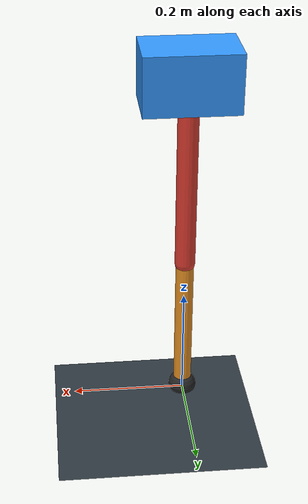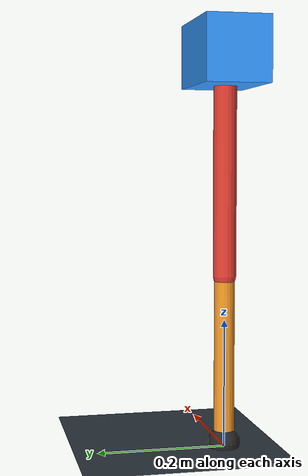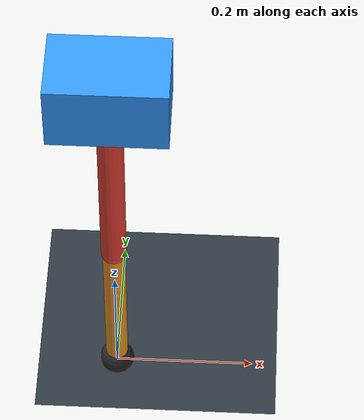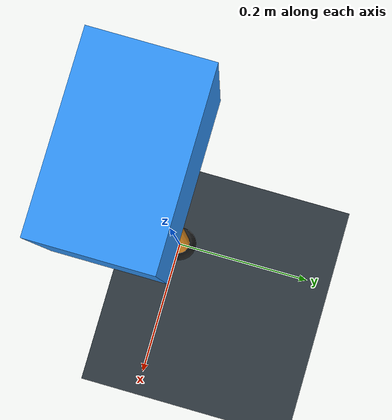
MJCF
<mujoco model="single_axis_two_bar">
  <compiler angle="radian" inertiafromgeom="true"/>
  <option timestep="0.001" integrator="implicitfast" gravity="0 0 -9.81"/>
  <default>
    <joint damping="0.08"/>
    <geom friction="1.2 0.01 0.0001" condim="3"/>
  </default>
  <worldbody>
    <geom name="floor" type="plane" size="5 5 0.1" rgba="0.18 0.22 0.25 1"/>
    <body name="carriage" pos="0 0 0.6124824573401789">
      <joint name="pole_slide" type="slide" axis="0 0 1"/>
      <geom name="payload" type="box" size="0.08 0.05 0.05" mass="2.7275278951926936" rgba="0.2 0.6 1 1"/>
      <body name="thigh" pos="0 0 0">
        <joint name="hip" type="hinge" axis="0 1 0"/>
        <geom name="thigh_link" type="capsule" fromto="0 0 0 0 0 -0.3436246924611911" size="0.018" mass="0.24483713397829981" rgba="0.9 0.25 0.2 1"/>
        <body name="shank" pos="0 0 -0.3436246924611911">
          <joint name="knee" type="hinge" axis="0 1 0"/>
          <geom name="shank_link" type="capsule" fromto="0 0 0 0 0 -0.26202732541528206" size="0.016" mass="0.1866979317440132" rgba="0.95 0.6 0.15 1"/>
          <geom name="foot" type="sphere" pos="0 0 -0.26202732541528206" size="0.025" mass="0.03" rgba="0.15 0.15 0.15 1"/>
          <site name="toe" pos="0 0 -0.26202732541528206" size="0.008"/>
        </body>
      </body>
    </body>
  </worldbody>
  <actuator>
    <motor name="hip_motor" joint="hip" ctrlrange="-29.388852137295814 29.388852137295814"/>
    <motor name="knee_motor" joint="knee" ctrlrange="-78.43814335046244 78.43814335046244"/>
  </actuator>
</mujoco>
